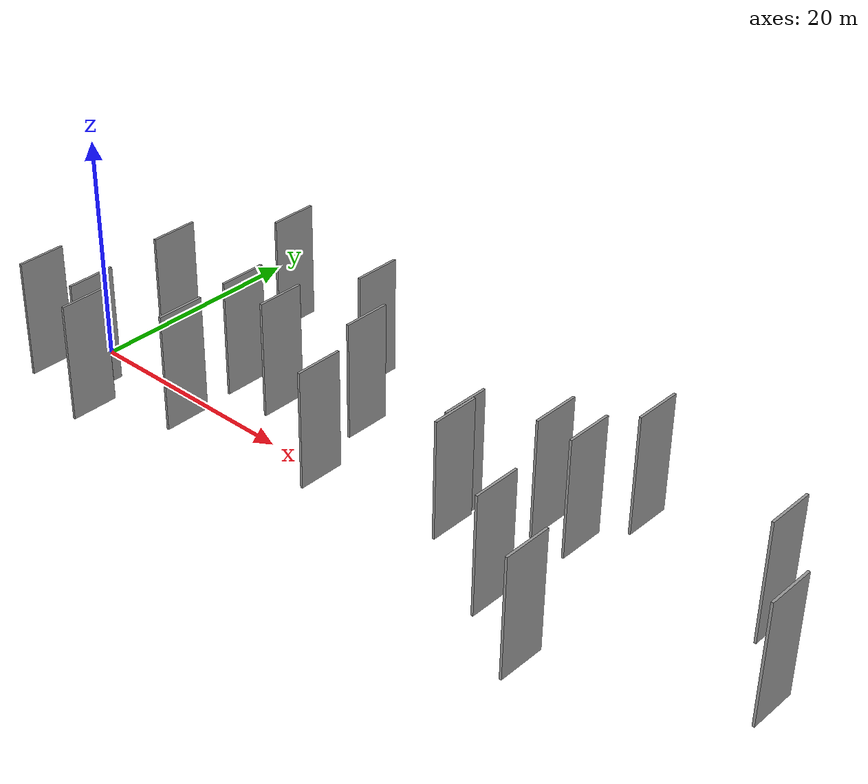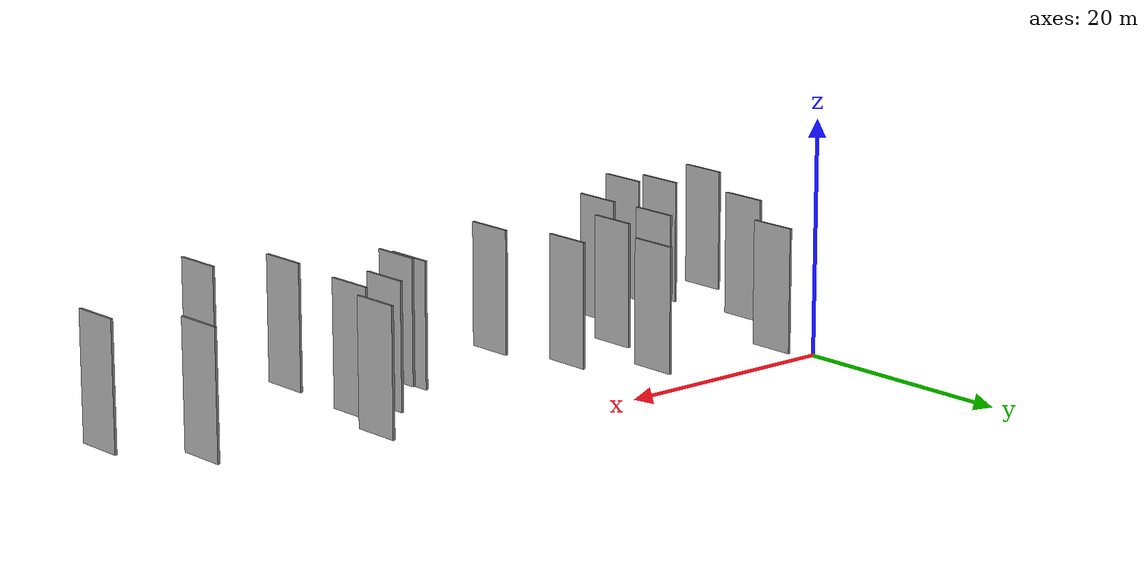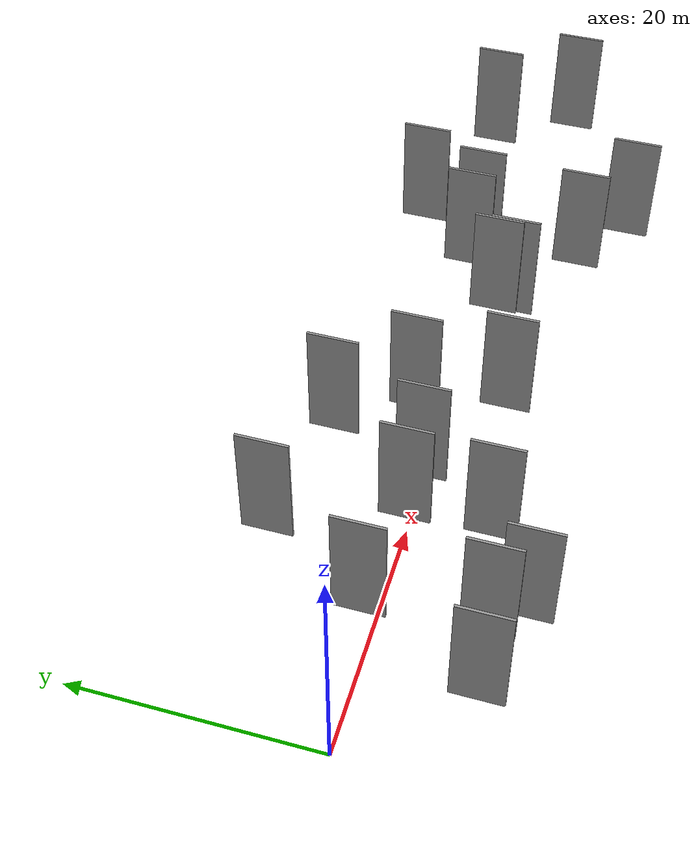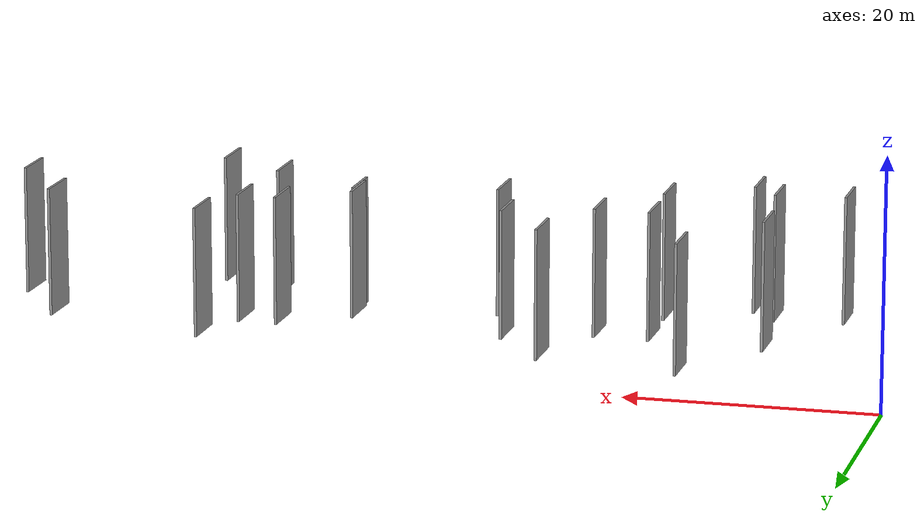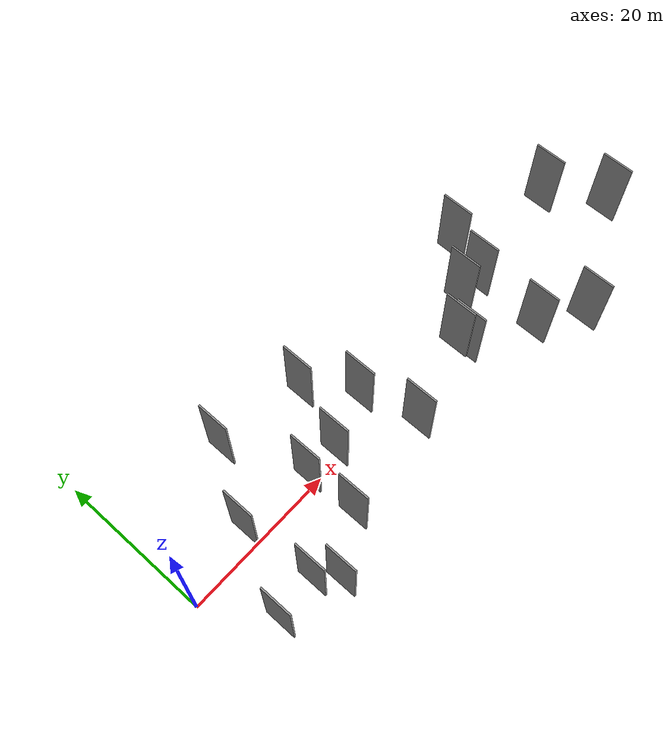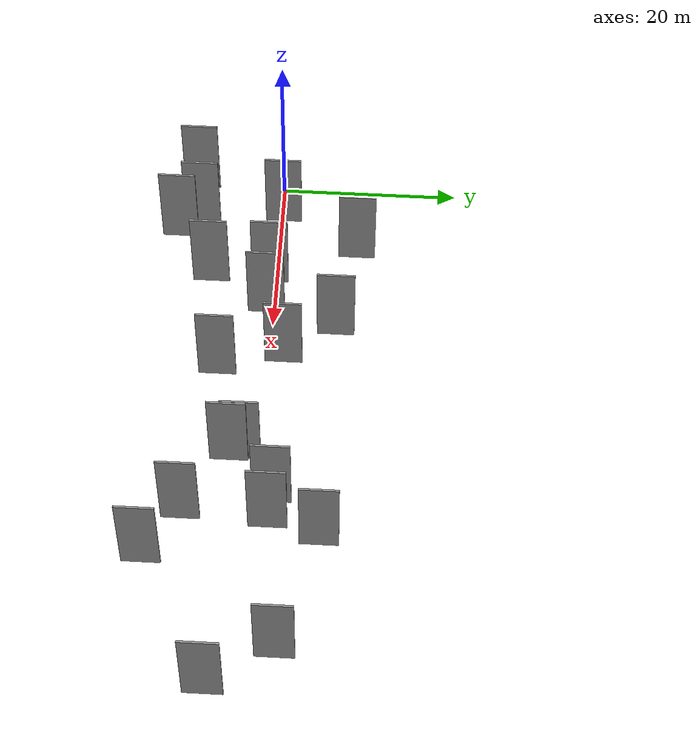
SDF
<sdf version="1.6">
 <world name="default">
  <scene>
   <sky><clouds><speed>12</speed></clouds></sky>
   <ambient>0.4 0.4 0.4 1</ambient>
   <background>0.7 0.7 0.7 1</background>
   <shadows>1</shadows>
  </scene>
  <gravity>0 0 -9.8066</gravity>
  <magnetic_field>6e-06 2.3e-05 -4.2e-05</magnetic_field>
  <physics default="0" name="default_physics" type="ode">
   <ode>
    <solver>
     <type>quick</type>
     <iters>10</iters>
     <sor>1.0</sor>
     <use_dynamic_moi_rescaling>0</use_dynamic_moi_rescaling>
    </solver>
    <constraints>
     <cfm>0</cfm>
     <erp>0.2</erp>
     <contact_max_correcting_vel>100</contact_max_correcting_vel>
     <contact_surface_layer>0.001</contact_surface_layer>
    </constraints>
   </ode>
   <max_step_size>0.004</max_step_size>
   <real_time_factor>1</real_time_factor>
   <real_time_update_rate>250</real_time_update_rate>
  </physics>
  <light name="sun" type="directional">
   <pose>0 0 10 0 0 0</pose>
   <diffuse>0.8 0.8 0.8 1</diffuse>
   <specular>0.2 0.2 0.2 1</specular>
   <attenuation>
    <range>1000</range>
    <constant>0.9</constant>
    <linear>0.01</linear>
    <quadratic>0.001</quadratic>
   </attenuation>
   <direction>-0.5 0.1 -0.9</direction>
  </light>
  <model name="grey_wall_1">
   <static>1</static>
   <pose>4.2249 -9.0640 5.0 0.000000 0.000000 1.570796</pose>
   <link name="link">
    <pose>0 0 5.00 0 0 0</pose>
    <collision name="collision"><geometry><box><size>4.00 0.2 10.00</size></box></geometry></collision>
    <visual name="visual">
     <cast_shadows>0</cast_shadows>
     <geometry><box><size>4.00 0.2 10.00</size></box></geometry>
     <material>
      <script>
       <uri>model://grey_wall/materials/scripts</uri>
       <uri>model://grey_wall/materials/textures</uri>
       <name>vrc/grey_wall</name>
      </script>
     </material>
    </visual>
   </link>
  </model>
  <model name="grey_wall_2">
   <static>1</static>
   <pose>9.5942 -8.5301 5.0 0.000000 0.000000 1.570796</pose>
   <link name="link">
    <pose>0 0 5.00 0 0 0</pose>
    <collision name="collision"><geometry><box><size>4.00 0.2 10.00</size></box></geometry></collision>
    <visual name="visual">
     <cast_shadows>0</cast_shadows>
     <geometry><box><size>4.00 0.2 10.00</size></box></geometry>
     <material>
      <script>
       <uri>model://grey_wall/materials/scripts</uri>
       <uri>model://grey_wall/materials/textures</uri>
       <name>vrc/grey_wall</name>
      </script>
     </material>
    </visual>
   </link>
  </model>
  <model name="grey_wall_3">
   <static>1</static>
   <pose>24.5956 7.2333 5.0 0.000000 0.000000 1.570796</pose>
   <link name="link">
    <pose>0 0 5.00 0 0 0</pose>
    <collision name="collision"><geometry><box><size>4.00 0.2 10.00</size></box></geometry></collision>
    <visual name="visual">
     <cast_shadows>0</cast_shadows>
     <geometry><box><size>4.00 0.2 10.00</size></box></geometry>
     <material>
      <script>
       <uri>model://grey_wall/materials/scripts</uri>
       <uri>model://grey_wall/materials/textures</uri>
       <name>vrc/grey_wall</name>
      </script>
     </material>
    </visual>
   </link>
  </model>
  <model name="grey_wall_4">
   <static>1</static>
   <pose>68.2701 -3.1832 5.0 0.000000 0.000000 1.570796</pose>
   <link name="link">
    <pose>0 0 5.00 0 0 0</pose>
    <collision name="collision"><geometry><box><size>4.00 0.2 10.00</size></box></geometry></collision>
    <visual name="visual">
     <cast_shadows>0</cast_shadows>
     <geometry><box><size>4.00 0.2 10.00</size></box></geometry>
     <material>
      <script>
       <uri>model://grey_wall/materials/scripts</uri>
       <uri>model://grey_wall/materials/textures</uri>
       <name>vrc/grey_wall</name>
      </script>
     </material>
    </visual>
   </link>
  </model>
  <model name="grey_wall_5">
   <static>1</static>
   <pose>64.0380 3.3772 5.0 0.000000 0.000000 1.570796</pose>
   <link name="link">
    <pose>0 0 5.00 0 0 0</pose>
    <collision name="collision"><geometry><box><size>4.00 0.2 10.00</size></box></geometry></collision>
    <visual name="visual">
     <cast_shadows>0</cast_shadows>
     <geometry><box><size>4.00 0.2 10.00</size></box></geometry>
     <material>
      <script>
       <uri>model://grey_wall/materials/scripts</uri>
       <uri>model://grey_wall/materials/textures</uri>
       <name>vrc/grey_wall</name>
      </script>
     </material>
    </visual>
   </link>
  </model>
  <model name="grey_wall_6">
   <static>1</static>
   <pose>8.7693 0.5602 5.0 0.000000 0.000000 1.570796</pose>
   <link name="link">
    <pose>0 0 5.00 0 0 0</pose>
    <collision name="collision"><geometry><box><size>4.00 0.2 10.00</size></box></geometry></collision>
    <visual name="visual">
     <cast_shadows>0</cast_shadows>
     <geometry><box><size>4.00 0.2 10.00</size></box></geometry>
     <material>
      <script>
       <uri>model://grey_wall/materials/scripts</uri>
       <uri>model://grey_wall/materials/textures</uri>
       <name>vrc/grey_wall</name>
      </script>
     </material>
    </visual>
   </link>
  </model>
  <model name="grey_wall_7">
   <static>1</static>
   <pose>11.5757 -10.8467 5.0 0.000000 0.000000 1.570796</pose>
   <link name="link">
    <pose>0 0 5.00 0 0 0</pose>
    <collision name="collision"><geometry><box><size>4.00 0.2 10.00</size></box></geometry></collision>
    <visual name="visual">
     <cast_shadows>0</cast_shadows>
     <geometry><box><size>4.00 0.2 10.00</size></box></geometry>
     <material>
      <script>
       <uri>model://grey_wall/materials/scripts</uri>
       <uri>model://grey_wall/materials/textures</uri>
       <name>vrc/grey_wall</name>
      </script>
     </material>
    </visual>
   </link>
  </model>
  <model name="grey_wall_8">
   <static>1</static>
   <pose>17.8787 -6.8454 5.0 0.000000 0.000000 1.570796</pose>
   <link name="link">
    <pose>0 0 5.00 0 0 0</pose>
    <collision name="collision"><geometry><box><size>4.00 0.2 10.00</size></box></geometry></collision>
    <visual name="visual">
     <cast_shadows>0</cast_shadows>
     <geometry><box><size>4.00 0.2 10.00</size></box></geometry>
     <material>
      <script>
       <uri>model://grey_wall/materials/scripts</uri>
       <uri>model://grey_wall/materials/textures</uri>
       <name>vrc/grey_wall</name>
      </script>
     </material>
    </visual>
   </link>
  </model>
  <model name="grey_wall_9">
   <static>1</static>
   <pose>41.2874 -1.6338 5.0 0.000000 0.000000 1.570796</pose>
   <link name="link">
    <pose>0 0 5.00 0 0 0</pose>
    <collision name="collision"><geometry><box><size>4.00 0.2 10.00</size></box></geometry></collision>
    <visual name="visual">
     <cast_shadows>0</cast_shadows>
     <geometry><box><size>4.00 0.2 10.00</size></box></geometry>
     <material>
      <script>
       <uri>model://grey_wall/materials/scripts</uri>
       <uri>model://grey_wall/materials/textures</uri>
       <name>vrc/grey_wall</name>
      </script>
     </material>
    </visual>
   </link>
  </model>
  <model name="grey_wall_10">
   <static>1</static>
   <pose>17.6806 -0.3486 5.0 0.000000 0.000000 1.570796</pose>
   <link name="link">
    <pose>0 0 5.00 0 0 0</pose>
    <collision name="collision"><geometry><box><size>4.00 0.2 10.00</size></box></geometry></collision>
    <visual name="visual">
     <cast_shadows>0</cast_shadows>
     <geometry><box><size>4.00 0.2 10.00</size></box></geometry>
     <material>
      <script>
       <uri>model://grey_wall/materials/scripts</uri>
       <uri>model://grey_wall/materials/textures</uri>
       <name>vrc/grey_wall</name>
      </script>
     </material>
    </visual>
   </link>
  </model>
  <model name="grey_wall_11">
   <static>1</static>
   <pose>21.9220 -0.4787 5.0 0.000000 0.000000 1.570796</pose>
   <link name="link">
    <pose>0 0 5.00 0 0 0</pose>
    <collision name="collision"><geometry><box><size>4.00 0.2 10.00</size></box></geometry></collision>
    <visual name="visual">
     <cast_shadows>0</cast_shadows>
     <geometry><box><size>4.00 0.2 10.00</size></box></geometry>
     <material>
      <script>
       <uri>model://grey_wall/materials/scripts</uri>
       <uri>model://grey_wall/materials/textures</uri>
       <name>vrc/grey_wall</name>
      </script>
     </material>
    </visual>
   </link>
  </model>
  <model name="grey_wall_12">
   <static>1</static>
   <pose>48.8392 -7.2472 5.0 0.000000 0.000000 1.570796</pose>
   <link name="link">
    <pose>0 0 5.00 0 0 0</pose>
    <collision name="collision"><geometry><box><size>4.00 0.2 10.00</size></box></geometry></collision>
    <visual name="visual">
     <cast_shadows>0</cast_shadows>
     <geometry><box><size>4.00 0.2 10.00</size></box></geometry>
     <material>
      <script>
       <uri>model://grey_wall/materials/scripts</uri>
       <uri>model://grey_wall/materials/textures</uri>
       <name>vrc/grey_wall</name>
      </script>
     </material>
    </visual>
   </link>
  </model>
  <model name="grey_wall_13">
   <static>1</static>
   <pose>13.6725 9.0009 5.0 0.000000 0.000000 1.570796</pose>
   <link name="link">
    <pose>0 0 5.00 0 0 0</pose>
    <collision name="collision"><geometry><box><size>4.00 0.2 10.00</size></box></geometry></collision>
    <visual name="visual">
     <cast_shadows>0</cast_shadows>
     <geometry><box><size>4.00 0.2 10.00</size></box></geometry>
     <material>
      <script>
       <uri>model://grey_wall/materials/scripts</uri>
       <uri>model://grey_wall/materials/textures</uri>
       <name>vrc/grey_wall</name>
      </script>
     </material>
    </visual>
   </link>
  </model>
  <model name="grey_wall_14">
   <static>1</static>
   <pose>46.3816 1.8595 5.0 0.000000 0.000000 1.570796</pose>
   <link name="link">
    <pose>0 0 5.00 0 0 0</pose>
    <collision name="collision"><geometry><box><size>4.00 0.2 10.00</size></box></geometry></collision>
    <visual name="visual">
     <cast_shadows>0</cast_shadows>
     <geometry><box><size>4.00 0.2 10.00</size></box></geometry>
     <material>
      <script>
       <uri>model://grey_wall/materials/scripts</uri>
       <uri>model://grey_wall/materials/textures</uri>
       <name>vrc/grey_wall</name>
      </script>
     </material>
    </visual>
   </link>
  </model>
  <model name="grey_wall_15">
   <static>1</static>
   <pose>41.5039 -2.9246 5.0 0.000000 0.000000 1.570796</pose>
   <link name="link">
    <pose>0 0 5.00 0 0 0</pose>
    <collision name="collision"><geometry><box><size>4.00 0.2 10.00</size></box></geometry></collision>
    <visual name="visual">
     <cast_shadows>0</cast_shadows>
     <geometry><box><size>4.00 0.2 10.00</size></box></geometry>
     <material>
      <script>
       <uri>model://grey_wall/materials/scripts</uri>
       <uri>model://grey_wall/materials/textures</uri>
       <name>vrc/grey_wall</name>
      </script>
     </material>
    </visual>
   </link>
  </model>
  <model name="grey_wall_16">
   <static>1</static>
   <pose>54.1841 -10.6708 5.0 0.000000 0.000000 1.570796</pose>
   <link name="link">
    <pose>0 0 5.00 0 0 0</pose>
    <collision name="collision"><geometry><box><size>4.00 0.2 10.00</size></box></geometry></collision>
    <visual name="visual">
     <cast_shadows>0</cast_shadows>
     <geometry><box><size>4.00 0.2 10.00</size></box></geometry>
     <material>
      <script>
       <uri>model://grey_wall/materials/scripts</uri>
       <uri>model://grey_wall/materials/textures</uri>
       <name>vrc/grey_wall</name>
      </script>
     </material>
    </visual>
   </link>
  </model>
  <model name="grey_wall_17">
   <static>1</static>
   <pose>28.6159 1.8537 5.0 0.000000 0.000000 1.570796</pose>
   <link name="link">
    <pose>0 0 5.00 0 0 0</pose>
    <collision name="collision"><geometry><box><size>4.00 0.2 10.00</size></box></geometry></collision>
    <visual name="visual">
     <cast_shadows>0</cast_shadows>
     <geometry><box><size>4.00 0.2 10.00</size></box></geometry>
     <material>
      <script>
       <uri>model://grey_wall/materials/scripts</uri>
       <uri>model://grey_wall/materials/textures</uri>
       <name>vrc/grey_wall</name>
      </script>
     </material>
    </visual>
   </link>
  </model>
  <model name="grey_wall_18">
   <static>1</static>
   <pose>49.4195 1.6422 5.0 0.000000 0.000000 1.570796</pose>
   <link name="link">
    <pose>0 0 5.00 0 0 0</pose>
    <collision name="collision"><geometry><box><size>4.00 0.2 10.00</size></box></geometry></collision>
    <visual name="visual">
     <cast_shadows>0</cast_shadows>
     <geometry><box><size>4.00 0.2 10.00</size></box></geometry>
     <material>
      <script>
       <uri>model://grey_wall/materials/scripts</uri>
       <uri>model://grey_wall/materials/textures</uri>
       <name>vrc/grey_wall</name>
      </script>
     </material>
    </visual>
   </link>
  </model>
  <model name="grey_wall_19">
   <static>1</static>
   <pose>30.5605 -5.0797 5.0 0.000000 0.000000 1.570796</pose>
   <link name="link">
    <pose>0 0 5.00 0 0 0</pose>
    <collision name="collision"><geometry><box><size>4.00 0.2 10.00</size></box></geometry></collision>
    <visual name="visual">
     <cast_shadows>0</cast_shadows>
     <geometry><box><size>4.00 0.2 10.00</size></box></geometry>
     <material>
      <script>
       <uri>model://grey_wall/materials/scripts</uri>
       <uri>model://grey_wall/materials/textures</uri>
       <name>vrc/grey_wall</name>
      </script>
     </material>
    </visual>
   </link>
  </model>
  <model name="grey_wall_20">
   <static>1</static>
   <pose>51.1907 6.9413 5.0 0.000000 0.000000 1.570796</pose>
   <link name="link">
    <pose>0 0 5.00 0 0 0</pose>
    <collision name="collision"><geometry><box><size>4.00 0.2 10.00</size></box></geometry></collision>
    <visual name="visual">
     <cast_shadows>0</cast_shadows>
     <geometry><box><size>4.00 0.2 10.00</size></box></geometry>
     <material>
      <script>
       <uri>model://grey_wall/materials/scripts</uri>
       <uri>model://grey_wall/materials/textures</uri>
       <name>vrc/grey_wall</name>
      </script>
     </material>
    </visual>
   </link>
  </model>
 </world>
</sdf>
